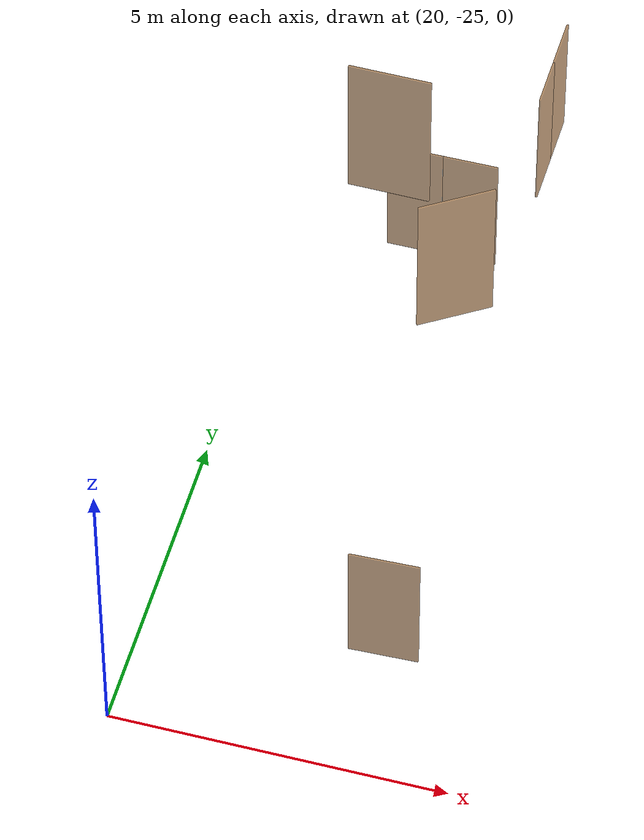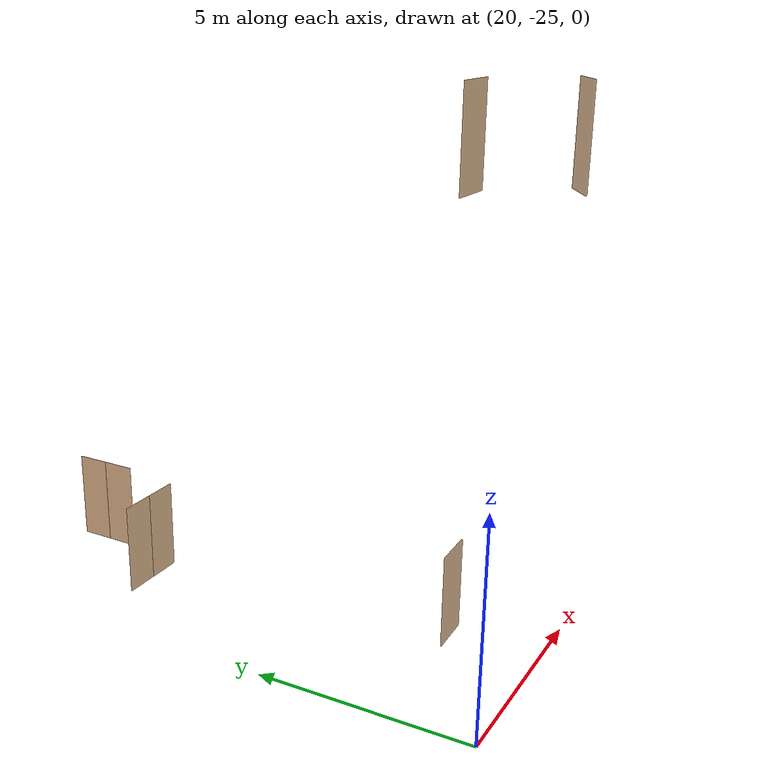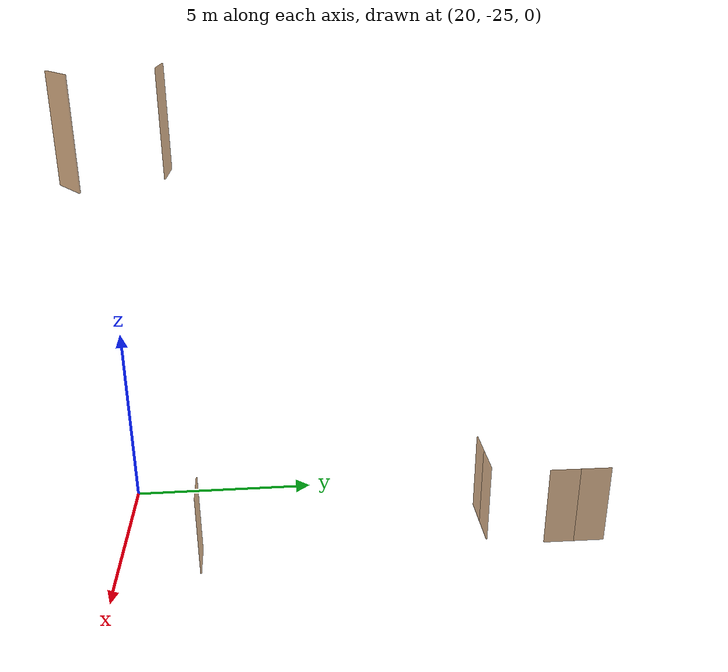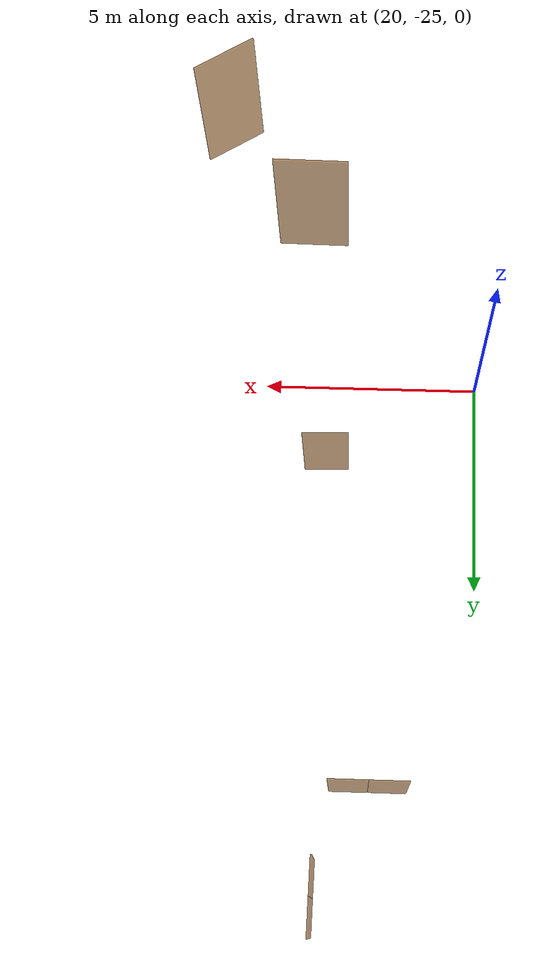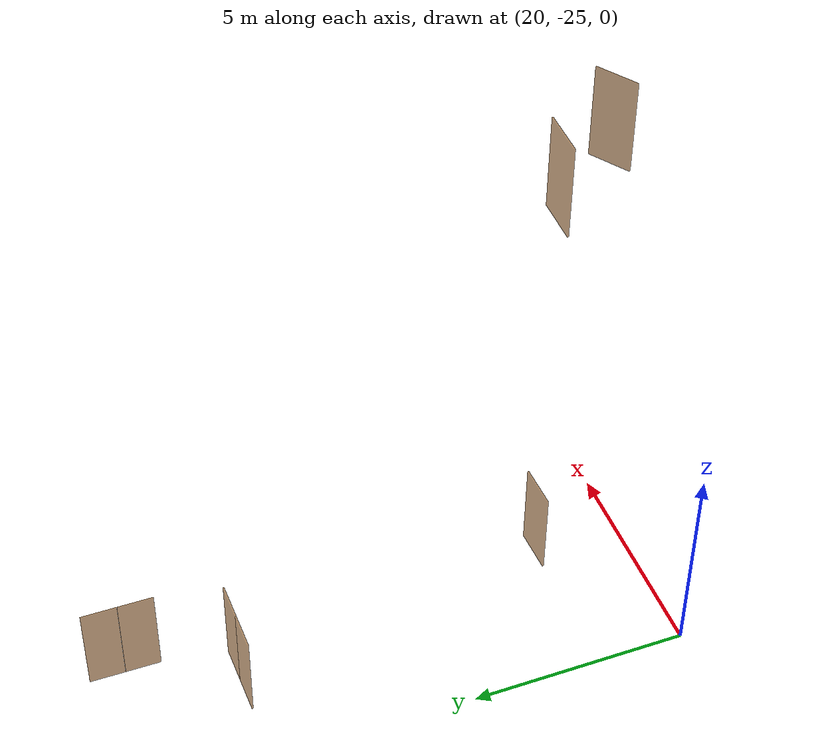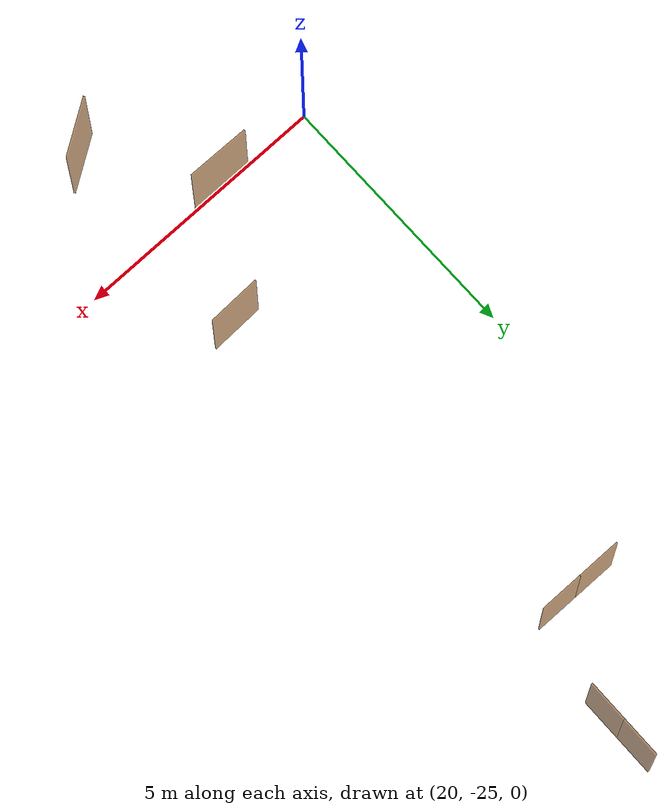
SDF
<sdf version="1.7">
 <world name="sim_world">
  <model name="part1_1">
   <pose>23.474426678062983 -13.057676065197946 0.0 0 0 1.5575382472829962</pose>
   <link name="right">
    <pose>0.4093948700962029 0 1.11 0 0 0</pose>
    <visual name="right_visual">
     <geometry><box><size>0.8087897401924058 0.03 2.2</size></box></geometry>
     <material>
      <ambient>0.5 0.25 0 0.6</ambient>
      <diffuse>0.5 0.25 0 0.6</diffuse>
      <pbr><metal><metalness>0.0</metalness></metal></pbr>
     </material>
    </visual>
    <collision name="right_collision">
     <geometry><box><size>0.8087897401924058 0.03 2.2</size></box></geometry>
     <surface><contact><collide_bitmask>0x02</collide_bitmask></contact></surface>
    </collision>
    <inertial>
     <mass>50.0</mass>
     <inertia><ixx>20.17041666666667</ixx><iyy>22.892253516002086</iyy><izz>2.729336849335414</izz></inertia>
    </inertial>
   </link>
   <joint name="right_joint" type="revolute">
    <parent>world</parent>
    <child>right</child>
    <axis><xyz>0 0 1</xyz><limit><lower>0</lower><upper>1.57</upper></limit></axis>
    <pose>0.4093948700962029 0 0 0 0 0</pose>
   </joint>
   <link name="left">
    <pose>-0.4093948700962029 0 1.11 0 0 0</pose>
    <visual name="left_visual">
     <geometry><box><size>0.8087897401924058 0.03 2.2</size></box></geometry>
     <material>
      <ambient>0.5 0.25 0 0.6</ambient>
      <diffuse>0.5 0.25 0 0.6</diffuse>
      <pbr><metal><metalness>0.0</metalness></metal></pbr>
     </material>
    </visual>
    <collision name="left_collision">
     <geometry><box><size>0.8087897401924058 0.03 2.2</size></box></geometry>
     <surface><contact><collide_bitmask>0x02</collide_bitmask></contact></surface>
    </collision>
    <inertial>
     <mass>50.0</mass>
     <inertia><ixx>20.17041666666667</ixx><iyy>22.892253516002086</iyy><izz>2.729336849335414</izz></inertia>
    </inertial>
   </link>
   <joint name="left_joint" type="revolute">
    <parent>world</parent>
    <child>left</child>
    <axis><xyz>0 0 1</xyz><limit><lower>-1.57</lower><upper>0</upper></limit></axis>
    <pose>-0.4093948700962029 0 0 0 0 0</pose>
   </joint>
   <plugin name="register_component" filename="libregister_component.so">
    <component name="Door">
     <v_max_door>0.5</v_max_door>
     <a_max_door>0.3</a_max_door>
     <a_nom_door>0.15</a_nom_door>
     <dx_min_door>0.01</dx_min_door>
     <f_max_door>500.0</f_max_door>
     <ros_interface>true</ros_interface>
     <door name="part1_1" type="DoubleSwingDoor" left_joint_name="left_joint" right_joint_name="right_joint"/>
    </component>
   </plugin>
  </model>
  <model name="part1_2">
   <pose>22.344348228843145 -15.362987000202047 0.0 0 0 3.138955944615511</pose>
   <link name="right">
    <pose>0.4275206745211724 0 1.11 0 0 0</pose>
    <visual name="right_visual">
     <geometry><box><size>0.8450413490423447 0.03 2.2</size></box></geometry>
     <material>
      <ambient>0.5 0.25 0 0.6</ambient>
      <diffuse>0.5 0.25 0 0.6</diffuse>
      <pbr><metal><metalness>0.0</metalness></metal></pbr>
     </material>
    </visual>
    <collision name="right_collision">
     <geometry><box><size>0.8450413490423447 0.03 2.2</size></box></geometry>
     <surface><contact><collide_bitmask>0x02</collide_bitmask></contact></surface>
    </collision>
    <inertial>
     <mass>50.0</mass>
     <inertia><ixx>20.17041666666667</ixx><iyy>23.142062006630447</iyy><izz>2.979145339963775</izz></inertia>
    </inertial>
   </link>
   <joint name="right_joint" type="revolute">
    <parent>world</parent>
    <child>right</child>
    <axis><xyz>0 0 1</xyz><limit><lower>0</lower><upper>1.57</upper></limit></axis>
    <pose>0.4275206745211724 0 0 0 0 0</pose>
   </joint>
   <link name="left">
    <pose>-0.4275206745211724 0 1.11 0 0 0</pose>
    <visual name="left_visual">
     <geometry><box><size>0.8450413490423447 0.03 2.2</size></box></geometry>
     <material>
      <ambient>0.5 0.25 0 0.6</ambient>
      <diffuse>0.5 0.25 0 0.6</diffuse>
      <pbr><metal><metalness>0.0</metalness></metal></pbr>
     </material>
    </visual>
    <collision name="left_collision">
     <geometry><box><size>0.8450413490423447 0.03 2.2</size></box></geometry>
     <surface><contact><collide_bitmask>0x02</collide_bitmask></contact></surface>
    </collision>
    <inertial>
     <mass>50.0</mass>
     <inertia><ixx>20.17041666666667</ixx><iyy>23.142062006630447</iyy><izz>2.979145339963775</izz></inertia>
    </inertial>
   </link>
   <joint name="left_joint" type="revolute">
    <parent>world</parent>
    <child>left</child>
    <axis><xyz>0 0 1</xyz><limit><lower>-1.57</lower><upper>0</upper></limit></axis>
    <pose>-0.4275206745211724 0 0 0 0 0</pose>
   </joint>
   <plugin name="register_component" filename="libregister_component.so">
    <component name="Door">
     <v_max_door>0.5</v_max_door>
     <a_max_door>0.3</a_max_door>
     <a_nom_door>0.15</a_nom_door>
     <dx_min_door>0.01</dx_min_door>
     <f_max_door>500.0</f_max_door>
     <ros_interface>true</ros_interface>
     <door name="part1_2" type="DoubleSwingDoor" left_joint_name="left_joint" right_joint_name="right_joint"/>
    </component>
   </plugin>
  </model>
  <model name="part2_5">
   <pose>23.49012789511284 -22.916034596184698 0.0 0 0 0.03134180106866015</pose>
   <link name="right">
    <pose>0 0 1.11 0 0 0</pose>
    <visual name="right_visual">
     <geometry><box><size>1.0320391962318292 0.03 2.2</size></box></geometry>
     <material>
      <ambient>0.5 0.25 0 0.6</ambient>
      <diffuse>0.5 0.25 0 0.6</diffuse>
      <pbr><metal><metalness>0.0</metalness></metal></pbr>
     </material>
    </visual>
    <collision name="right_collision">
     <geometry><box><size>1.0320391962318292 0.03 2.2</size></box></geometry>
     <surface><contact><collide_bitmask>0x02</collide_bitmask></contact></surface>
    </collision>
    <inertial>
     <mass>50.0</mass>
     <inertia><ixx>20.17041666666667</ixx><iyy>24.60460376066184</iyy><izz>4.441687093995166</izz></inertia>
    </inertial>
   </link>
   <joint name="right_joint" type="revolute">
    <parent>world</parent>
    <child>right</child>
    <axis><xyz>0 0 -1</xyz><limit><lower>0</lower><upper>1.57</upper></limit></axis>
    <pose>0.5210195981159146 0 0 0 0 0</pose>
   </joint>
   <plugin name="register_component" filename="libregister_component.so">
    <component name="Door">
     <v_max_door>0.5</v_max_door>
     <a_max_door>0.3</a_max_door>
     <a_nom_door>0.15</a_nom_door>
     <dx_min_door>0.01</dx_min_door>
     <f_max_door>500.0</f_max_door>
     <ros_interface>true</ros_interface>
     <door name="part2_5" type="SwingDoor" left_joint_name="empty_joint" right_joint_name="right_joint"/>
    </component>
   </plugin>
  </model>
  <model name="L3_part4_6">
   <pose>23.505048182046423 -22.915969505202398 10.0 0 0 3.126351660585379</pose>
   <link name="right">
    <pose>0 0 1.11 0 0 0</pose>
    <visual name="right_visual">
     <geometry><box><size>1.0768632765966428 0.03 2.2</size></box></geometry>
     <material>
      <ambient>0.5 0.25 0 0.6</ambient>
      <diffuse>0.5 0.25 0 0.6</diffuse>
      <pbr><metal><metalness>0.0</metalness></metal></pbr>
     </material>
    </visual>
    <collision name="right_collision">
     <geometry><box><size>1.0768632765966428 0.03 2.2</size></box></geometry>
     <surface><contact><collide_bitmask>0x02</collide_bitmask></contact></surface>
    </collision>
    <inertial>
     <mass>50.0</mass>
     <inertia><ixx>20.17041666666667</ixx><iyy>24.998477152010246</iyy><izz>4.835560485343574</izz></inertia>
    </inertial>
   </link>
   <joint name="right_joint" type="revolute">
    <parent>world</parent>
    <child>right</child>
    <axis><xyz>0 0 -1</xyz><limit><lower>0</lower><upper>1.57</upper></limit></axis>
    <pose>0.5434316382983214 0 0 0 0 0</pose>
   </joint>
   <plugin name="register_component" filename="libregister_component.so">
    <component name="Door">
     <v_max_door>0.5</v_max_door>
     <a_max_door>0.3</a_max_door>
     <a_nom_door>0.15</a_nom_door>
     <dx_min_door>0.01</dx_min_door>
     <f_max_door>500.0</f_max_door>
     <ros_interface>true</ros_interface>
     <door name="L3_part4_6" type="SwingDoor" left_joint_name="empty_joint" right_joint_name="right_joint"/>
    </component>
   </plugin>
  </model>
  <model name="L3_part4_8_end">
   <pose>24.838497719462293 -24.68716529310401 10.0 0 0 0.5770563940914919</pose>
   <link name="right">
    <pose>0 0 1.11 0 0 0</pose>
    <visual name="right_visual">
     <geometry><box><size>0.9964503208999891 0.03 2.2</size></box></geometry>
     <material>
      <ambient>0.5 0.25 0 0.6</ambient>
      <diffuse>0.5 0.25 0 0.6</diffuse>
      <pbr><metal><metalness>0.0</metalness></metal></pbr>
     </material>
    </visual>
    <collision name="right_collision">
     <geometry><box><size>0.9964503208999891 0.03 2.2</size></box></geometry>
     <surface><contact><collide_bitmask>0x02</collide_bitmask></contact></surface>
    </collision>
    <inertial>
     <mass>50.0</mass>
     <inertia><ixx>20.17041666666667</ixx><iyy>24.303805175090385</iyy><izz>4.140888508423713</izz></inertia>
    </inertial>
   </link>
   <joint name="right_joint" type="revolute">
    <parent>world</parent>
    <child>right</child>
    <axis><xyz>0 0 -1</xyz><limit><lower>0</lower><upper>1.57</upper></limit></axis>
    <pose>0.5032251604499945 0 0 0 0 0</pose>
   </joint>
   <plugin name="register_component" filename="libregister_component.so">
    <component name="Door">
     <v_max_door>0.5</v_max_door>
     <a_max_door>0.3</a_max_door>
     <a_nom_door>0.15</a_nom_door>
     <dx_min_door>0.01</dx_min_door>
     <f_max_door>500.0</f_max_door>
     <ros_interface>true</ros_interface>
     <door name="L3_part4_8_end" type="SwingDoor" left_joint_name="empty_joint" right_joint_name="right_joint"/>
    </component>
   </plugin>
  </model>
 </world>
</sdf>
